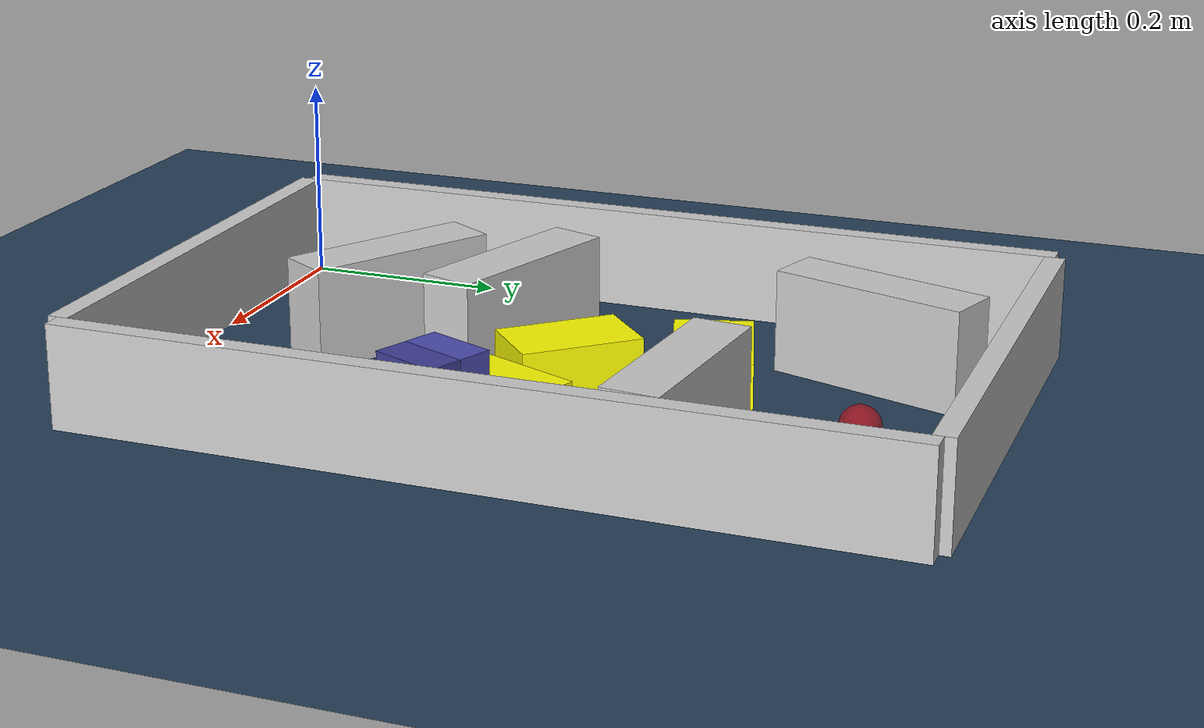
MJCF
<?xml version='1.0' encoding='utf-8'?>
<mujoco model="real_buildable">
  <compiler angle="degree" />
  <option timestep="0.002" integrator="implicitfast" iterations="100" cone="elliptic" />
  <default>
    <geom density="1" />
  </default>
  <asset>
    <texture builtin="gradient" height="3072" rgb1="0.3 0.5 0.7" rgb2="0 0 0" type="skybox" width="512" />
    <texture builtin="checker" height="300" mark="edge" markrgb="0.8 0.8 0.8" name="groundplane" rgb1="0.2 0.3 0.4" rgb2="0.1 0.2 0.3" type="2d" width="300" />
    <material name="groundplane" reflectance="0.2" texrepeat="5 5" texture="groundplane" texuniform="true" />
  </asset>
  <worldbody>
    <light dir="0 0 -1" directional="true" pos="0 0 1.5" />
    <geom name="floor" type="plane" condim="4" friction="0.5 0.005 0.001" material="groundplane" size="0 0 0.05" />
    <body name="walls">
      <geom name="wall_boundary_left" type="box" condim="4" friction="1.0 0.005 0.0001" rgba="0.8 0.8 0.8 1" pos="-0.010000 0.387500 0.050000" euler="0 0 0.000000" size="0.010000 0.397500 0.050000" />
      <geom name="wall_boundary_right" type="box" condim="4" friction="1.0 0.005 0.0001" rgba="0.8 0.8 0.8 1" pos="0.500000 0.387500 0.050000" euler="0 0 0.000000" size="0.010000 0.397500 0.050000" />
      <geom name="wall_boundary_bottom" type="box" condim="4" friction="1.0 0.005 0.0001" rgba="0.8 0.8 0.8 1" pos="0.245000 -0.010000 0.050000" euler="0 0 0.000000" size="0.245000 0.010000 0.050000" />
      <geom name="wall_boundary_top" type="box" condim="4" friction="1.0 0.005 0.0001" rgba="0.8 0.8 0.8 1" pos="0.245000 0.785000 0.050000" euler="0 0 0.000000" size="0.245000 0.010000 0.050000" />
      <geom name="wall_inner_1" type="box" condim="4" friction="1.0 0.005 0.0001" rgba="0.8 0.8 0.8 1" pos="0.191549 0.172272 0.050000" euler="0 0 -31.119121" size="0.097500 0.027500 0.050000" />
      <geom name="wall_inner_2" type="box" condim="4" friction="1.0 0.005 0.0001" rgba="0.8 0.8 0.8 1" pos="0.176347 0.297541 0.050000" euler="0 0 -18.430544" size="0.097500 0.027500 0.050000" />
      <geom name="wall_inner_3" type="box" condim="4" friction="1.0 0.005 0.0001" rgba="0.8 0.8 0.8 1" pos="0.390000 0.535000 0.050000" euler="0 0 174.400000" size="0.097500 0.027500 0.050000" />
      <geom name="wall_inner_4" type="box" condim="4" friction="1.0 0.005 0.0001" rgba="0.8 0.8 0.8 1" pos="0.137000 0.649000 0.050000" euler="0 0 72.300000" size="0.097500 0.027500 0.050000" />
    </body>
    <body name="car" pos="0.40121345288176224 0.31326720041188544 0.01" quat="0.19768785889416243 0 0 0.98026502051528985">
      <freejoint name="car_freejoint" />
      <inertial pos="0 0 0.0375" mass="0.35" diaginertia="0.000266 0.000266 0.000286" />
      <geom name="front_chassis_collision" type="box" pos="0.0175 0 0.0375" size="0.0175 0.035 0.0325" rgba="0.3 0.3 0.7 1" />
      <geom name="rear_chassis_collision" type="box" pos="-0.0175 0 0.0375" size="0.0175 0.035 0.0325" rgba="0.25 0.25 0.6 1" />
      <geom name="front_marker" type="box" pos="0.034 0 0.0505" size="0.002 0.015 0.01" rgba="1 0.2 0.2 1" contype="0" conaffinity="0" />
      <body name="rear_support_body" pos="-0.03 0 0.0025">
        <joint name="rear_caster_joint" type="ball" damping="0.0001" />
        <inertial pos="0 0 0" mass="0.025" diaginertia="0.000001 0.000001 0.000001" />
        <geom name="rear_support" type="sphere" pos="0 0 0" size="0.0025" friction="0 0 0" rgba="0.7 0.1 0.1 1" />
      </body>
      <body name="front_support_body" pos="0.03 0 0.0025">
        <joint name="front_caster_joint" type="ball" damping="0.0001" />
        <inertial pos="0 0 0" mass="0.025" diaginertia="0.000001 0.000001 0.000001" />
        <geom name="front_support" type="sphere" pos="0 0 0" size="0.0025" friction="0 0 0" rgba="0.1 0.7 0.1 1" />
      </body>
      <body name="left_wheel" pos="0 0.0375 0.015">
        <inertial pos="0 0 0" mass="0.05" diaginertia="0.000003 0.000006 0.000003" />
        <joint name="left_wheel_joint" type="hinge" axis="0 1 0" damping="0.01" armature="0.0001" />
        <geom name="left_wheel_collision" type="cylinder" size="0.015 0.0005" euler="90 0 0" rgba="0.1 0.1 0.1 1" />
      </body>
      <body name="right_wheel" pos="0 -0.0375 0.015">
        <inertial pos="0 0 0" mass="0.05" diaginertia="0.000003 0.000006 0.000003" />
        <joint name="right_wheel_joint" type="hinge" axis="0 1 0" damping="0.01" armature="0.0001" />
        <geom name="right_wheel_collision" type="cylinder" size="0.015 0.0005" euler="90 0 0" rgba="0.1 0.1 0.1 1" />
      </body>
    </body>
    <body name="obstacle_0_movable">
      <geom name="obstacle_0_movable" condim="4" pos="0.3337552083287621 0.33444113764638794 0.02" friction="1 0.005 0.0001" rgba="1 1 0 1" size="0.035000 0.075000 0.020000" type="box" mass="0.1" quat="0.19502156103398813 0 0 0.98079895530728745" />
      <joint type="free" />
    </body>
    <body name="obstacle_1_movable">
      <geom name="obstacle_1_movable" condim="4" pos="0.21000000000000044 0.50999999999999956 0.025000000000000001" friction="1 0.005 0.0001" rgba="1 1 0 1" size="0.037500 0.060000 0.025000" type="box" mass="0.1" quat="0.80281747519111457 0 0 -0.59622487496561583" />
      <joint type="free" />
    </body>
    <body name="obstacle_2_movable">
      <geom name="obstacle_2_movable" condim="4" pos="0.23806241821075502 0.37840408086035004 0.025000000000000001" friction="1 0.005 0.0001" rgba="1 1 0 1" size="0.037500 0.060000 0.025000" type="box" mass="0.1" quat="0.93257340760943674 0 0 0.36098038647511488" />
      <joint type="free" />
    </body>
    <site name="goal" type="sphere" pos="0.245000 0.660000 0.0" size="0.02" rgba="1 0 0 0.5" />
  </worldbody>
  <actuator>
    <velocity name="left_wheel_drive" joint="left_wheel_joint" ctrlrange="-25 25" kv="0.75" forcerange="-0.5 0.5" />
    <velocity name="right_wheel_drive" joint="right_wheel_joint" ctrlrange="-25 25" kv="0.75" forcerange="-0.5 0.5" />
  </actuator>
</mujoco>
